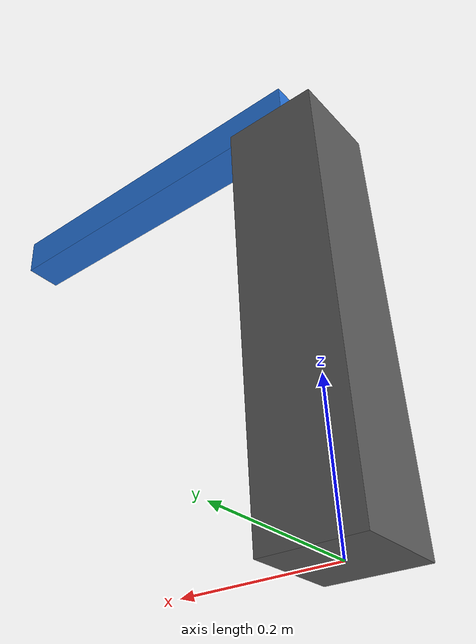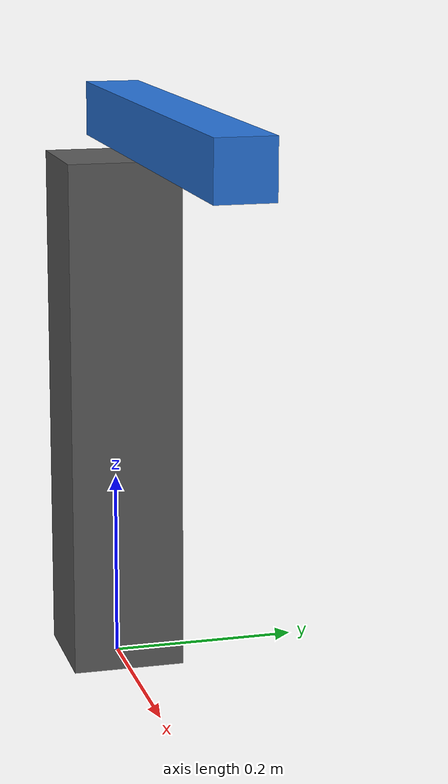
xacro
<?xml version="1.0"?>
<robot name="control_lab_arm" xmlns:xacro="http://www.ros.org/wiki/xacro">
  <material name="blue"><color rgba="0.15 0.45 0.85 1"/></material>
  <material name="gray"><color rgba="0.35 0.35 0.35 1"/></material>
  <!-- A link named world and a fixed joint anchor the pedestal in Gazebo. -->
  <link name="world"/>
  <joint name="world_to_pedestal" type="fixed">
    <parent link="world"/><child link="pedestal"/>
    <origin xyz="0 0 0.275"/>
  </joint>
  <link name="pedestal">
    <visual><geometry><box size="0.12 0.12 0.55"/></geometry><material name="gray"/></visual>
    <collision><geometry><box size="0.12 0.12 0.55"/></geometry></collision>
    <inertial>
      <mass value="5"/>
      <inertia ixx="0.13204" ixy="0" ixz="0" iyy="0.13204" iyz="0" izz="0.012"/>
    </inertial>
  </link>
  <joint name="shoulder_joint" type="revolute">
    <parent link="pedestal"/><child link="arm_link"/>
    <origin xyz="0 0 0.325"/>
    <axis xyz="0 1 0"/>
    <limit lower="-1.4" upper="1.4" effort="12" velocity="2.0"/>
    <dynamics damping="0.1" friction="0.01"/>
  </joint>
  <link name="arm_link">
    <visual>
      <origin xyz="0.25 0 0"/>
      <geometry><box size="0.5 0.055 0.055"/></geometry><material name="blue"/>
    </visual>
    <collision><origin xyz="0.25 0 0"/><geometry><box size="0.5 0.055 0.055"/></geometry></collision>
    <inertial>
      <origin xyz="0.25 0 0"/><mass value="0.6"/>
      <inertia ixx="0.0003025" ixy="0" ixz="0" iyy="0.01265125" iyz="0" izz="0.01265125"/>
    </inertial>
  </link>
  <transmission name="shoulder_transmission">
    <type>transmission_interface/SimpleTransmission</type>
    <joint name="shoulder_joint"><hardwareInterface>hardware_interface/EffortJointInterface</hardwareInterface></joint>
    <actuator name="shoulder_motor">
      <hardwareInterface>hardware_interface/EffortJointInterface</hardwareInterface>
      <mechanicalReduction>1</mechanicalReduction>
    </actuator>
  </transmission>
  <gazebo reference="pedestal"><material>Gazebo/Grey</material></gazebo>
  <gazebo reference="arm_link"><material>Gazebo/Blue</material></gazebo>
  <gazebo>
    <plugin name="gazebo_ros_control" filename="libgazebo_ros_control.so">
      <robotNamespace>/</robotNamespace>
      <robotParam>/robot_description</robotParam>
      <robotSimType>gazebo_ros_control/DefaultRobotHWSim</robotSimType>
      <controlPeriod>0.001</controlPeriod>
    </plugin>
  </gazebo>
</robot>
